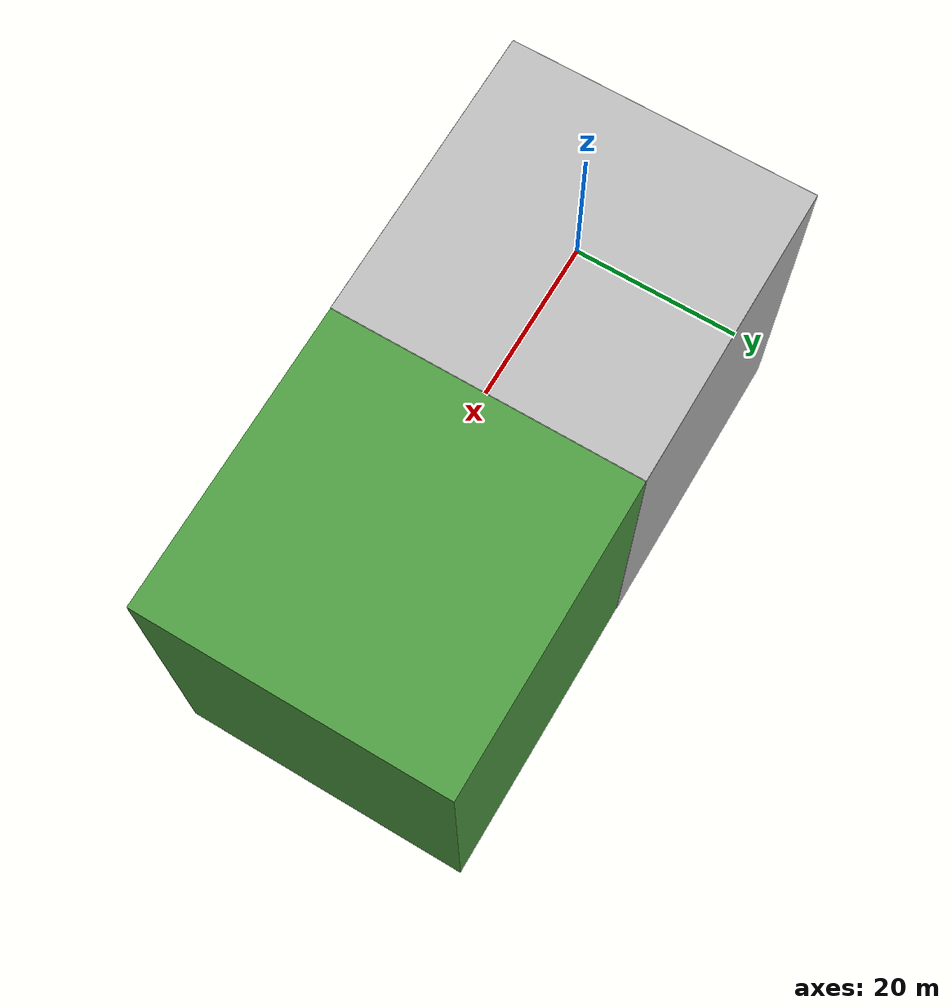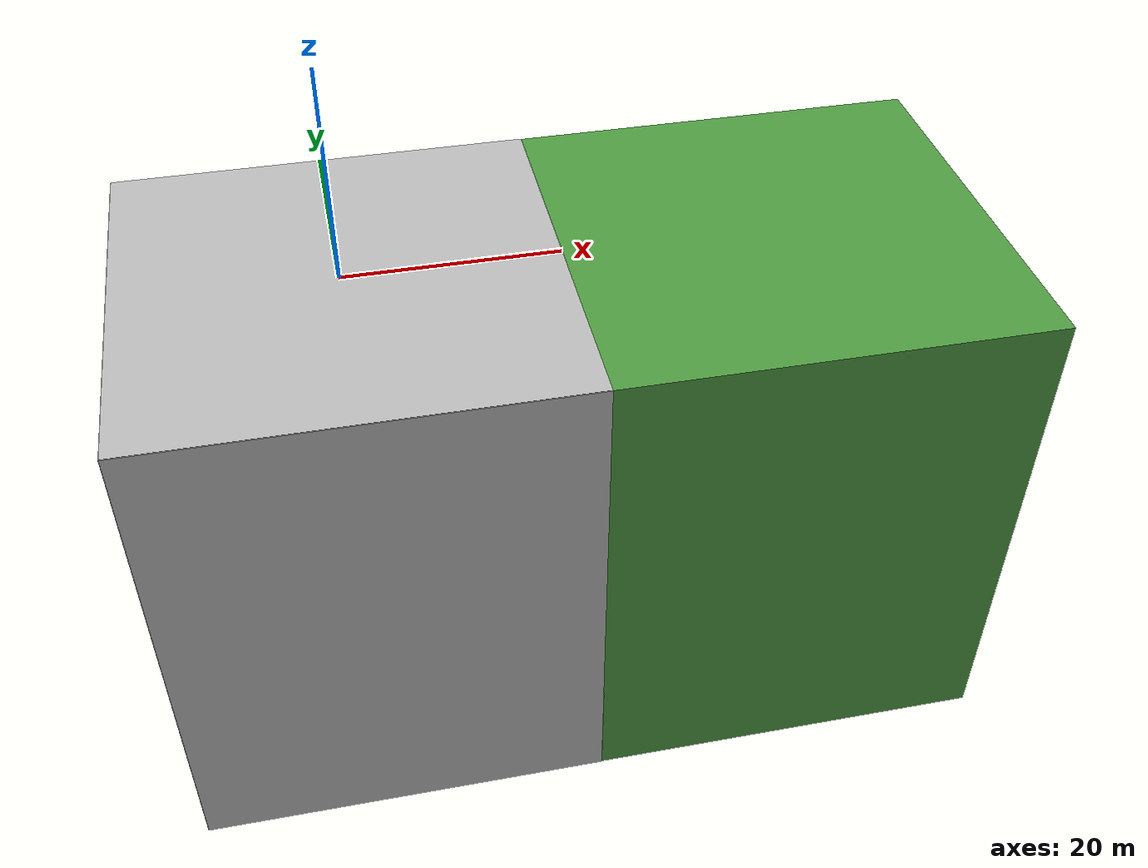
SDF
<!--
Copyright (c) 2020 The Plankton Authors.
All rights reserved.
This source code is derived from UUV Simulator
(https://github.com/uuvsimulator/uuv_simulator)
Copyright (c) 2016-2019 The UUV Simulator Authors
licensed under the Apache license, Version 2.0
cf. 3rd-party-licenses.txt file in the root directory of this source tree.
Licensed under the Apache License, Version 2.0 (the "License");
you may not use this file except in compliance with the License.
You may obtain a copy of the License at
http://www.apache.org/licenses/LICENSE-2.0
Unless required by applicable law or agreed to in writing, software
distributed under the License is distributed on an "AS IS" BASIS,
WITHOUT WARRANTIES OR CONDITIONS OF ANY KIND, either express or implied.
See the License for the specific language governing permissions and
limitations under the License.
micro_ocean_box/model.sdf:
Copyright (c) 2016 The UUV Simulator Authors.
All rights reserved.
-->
<?xml version="1.0" ?>
<sdf version="1.5">
  <world name="empty_underwater">
    <physics name="default_physics" default="true" type="ode">
      <max_step_size>0.002</max_step_size>
      <real_time_factor>1</real_time_factor>
      <real_time_update_rate>500</real_time_update_rate>
      <ode>
        <solver>
          <type>quick</type>
          <iters>50</iters>
          <sor>0.5</sor>
        </solver>
      </ode>
    </physics>
    <scene>
      <ambient>0.01 0.01 0.01 1.0</ambient>
      <sky>
        <clouds>
          <speed>12</speed>
        </clouds>
      </sky>
      <shadows>1</shadows>
      <fog>
        <color>0.1 0.2 0.3 1.0</color>
        <type>linear</type>
        <density>0.001</density>
        <start>10</start>
        <end>200</end>
      </fog>
    </scene>

    <!-- Origin placed somewhere in the middle of the North Sea  -->
    <spherical_coordinates>
      <latitude_deg>56.71897669633431</latitude_deg>
      <longitude_deg>3.515625</longitude_deg>
    </spherical_coordinates>

    <!-- Global light source -->
    <include>
      <uri>model://sun</uri>
    </include>

    <!-- Bounding box with sea surface -->
    <include>
      <uri>model://micro_ocean_box</uri>
      <pose>0 0 0 0 0 0</pose>
    </include>

    <!-- Land box -->
    <include>
      <uri>model://land_box</uri>
    </include>

    <plugin name="gazebo_ros" filename="libgazebo_ros_state.so">
      <ros>
        <namespace>/gazebo</namespace>
      </ros>
    </plugin>

    <plugin name="underwater_current_plugin" filename="libuuv_underwater_current_ros_plugin.so">
      <namespace>hydrodynamics</namespace>
      <constant_current>
        <topic>current_velocity</topic>
        <velocity>
          <mean>0</mean>
          <min>0</min>
          <max>5</max>
          <mu>0.0</mu>
          <noiseAmp>0.0</noiseAmp>
        </velocity>

        <horizontal_angle>
          <mean>0</mean>
          <min>-3.141592653589793238</min>
          <max>3.141592653589793238</max>
          <mu>0.0</mu>
          <noiseAmp>0.0</noiseAmp>
        </horizontal_angle>

        <vertical_angle>
          <mean>0</mean>
          <min>-3.141592653589793238</min>
          <max>3.141592653589793238</max>
          <mu>0.0</mu>
          <noiseAmp>0.0</noiseAmp>
        </vertical_angle>
      </constant_current>
    </plugin>

    <plugin name="sc_interface" filename="libuuv_sc_ros_interface_plugin.so"/>

  </world>
</sdf>

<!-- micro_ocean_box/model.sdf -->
<sdf version="1.5">
  <model name="micro_ocean_box">
    <static>true</static>
    <link name="link">
      <visual name="ground">
        <cast_shadows>false</cast_shadows>
        <pose>0 0 -50 0 0 0</pose>
        <geometry>
          <box>
            <size>40 40 .1</size>
          </box>
        </geometry>
        <material>
          <script>
            <uri>file://media/materials/scripts/sand.material</uri>
            <name>UUVSimulator/SandAndStones</name>
          </script>
        </material>
      </visual>

      <collision name="ground">
        <pose>0 0 -50 0 0 0</pose>
        <geometry>
          <box>
            <size>40 40 .1</size>
          </box>
        </geometry>
      </collision>

      <visual name="surface">
        <cast_shadows>false</cast_shadows>
        <pose>0 0 0 0 0 0</pose>
        <geometry>
          <box>
            <size>40 40 .1</size>
          </box>
        </geometry>
        <material>
          <script>
            <uri>file://media/materials/scripts/water.material</uri>
            <name>UUVSimulator/StaticDeepWater</name>
          </script>
        </material>
      </visual>

      <visual name="north">
        <cast_shadows>false</cast_shadows>
        <pose>20 0 -25 0 0 0</pose>
        <geometry>
          <box>
            <size>.1 40 50</size>
          </box>
        </geometry>
        <material>
          <script>
            <uri>file://media/materials/scripts/water.material</uri>
            <name>UUVSimulator/SeaWall</name>
          </script>
        </material>
      </visual>

      <visual name="south">
        <cast_shadows>false</cast_shadows>
        <pose>-20 0 -25 0 0 0</pose>
        <geometry>
          <box>
            <size>.1 40 50</size>
          </box>
        </geometry>
        <material>
          <script>
            <uri>file://media/materials/scripts/water.material</uri>
            <name>UUVSimulator/SeaWall</name>
          </script>
        </material>
      </visual>

      <visual name="east">
        <cast_shadows>false</cast_shadows>
        <pose>0 -20 -25 0 0 0</pose>
        <geometry>
          <box>
            <size>40 .1 50</size>
          </box>
        </geometry>
        <material>
          <script>
            <uri>file://media/materials/scripts/water.material</uri>
            <name>UUVSimulator/SeaWall</name>
          </script>
        </material>
      </visual>

      <visual name="west">
        <cast_shadows>false</cast_shadows>
        <pose>0 20 -25 0 0 0</pose>
        <geometry>
          <box>
            <size>40 .1 50</size>
          </box>
        </geometry>
        <material>
          <script>
            <uri>file://media/materials/scripts/water.material</uri>
            <name>UUVSimulator/SeaWall</name>
          </script>
        </material>
      </visual>
    </link>
  </model>
</sdf>

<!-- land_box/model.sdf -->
<sdf version='1.7'>
  <model name='land_box'>
    <link name='link'>
      <inertial>
        <mass>1</mass>
        <inertia>
          <ixx>0.166667</ixx>
          <ixy>0</ixy>
          <ixz>0</ixz>
          <iyy>0.166667</iyy>
          <iyz>0</iyz>
          <izz>0.166667</izz>
        </inertia>
        <pose>0 0 0 0 -0 0</pose>
      </inertial>
      <self_collide>0</self_collide>
      <enable_wind>0</enable_wind>
      <kinematic>0</kinematic>
      <pose>40 0 -25 0 -0 0</pose>
      <gravity>1</gravity>
      <visual name='visual'>
        <geometry>
          <box>
            <size>40 40 50</size>
          </box>
        </geometry>
        <material>
          <script>
            <name>Gazebo/Grass</name>
            <uri>file://media/materials/scripts/gazebo.material</uri>
          </script>
          <shader type='pixel'>
            <normal_map>__default__</normal_map>
          </shader>
          <ambient>0.3 0.3 0.3 1</ambient>
          <diffuse>0.7 0.7 0.7 1</diffuse>
          <specular>0.01 0.01 0.01 1</specular>
          <emissive>0 0 0 1</emissive>
        </material>
        <pose>0 0 0 0 -0 0</pose>
        <transparency>0</transparency>
        <cast_shadows>1</cast_shadows>
      </visual>
      <collision name='collision'>
        <laser_retro>0</laser_retro>
        <max_contacts>10</max_contacts>
        <pose>0 0 0 0 -0 0</pose>
        <geometry>
          <box>
            <size>40 40 49.96</size>
          </box>
        </geometry>
        <surface>
          <friction>
            <ode>
              <mu>1</mu>
              <mu2>1</mu2>
              <fdir1>0 0 0</fdir1>
              <slip1>0</slip1>
              <slip2>0</slip2>
            </ode>
            <torsional>
              <coefficient>1</coefficient>
              <patch_radius>0</patch_radius>
              <surface_radius>0</surface_radius>
              <use_patch_radius>1</use_patch_radius>
              <ode>
                <slip>0</slip>
              </ode>
            </torsional>
          </friction>
          <bounce>
            <restitution_coefficient>0</restitution_coefficient>
            <threshold>1e+06</threshold>
          </bounce>
          <contact>
            <collide_without_contact>0</collide_without_contact>
            <collide_without_contact_bitmask>1</collide_without_contact_bitmask>
            <collide_bitmask>1</collide_bitmask>
            <ode>
              <soft_cfm>0</soft_cfm>
              <soft_erp>0.2</soft_erp>
              <kp>1e+13</kp>
              <kd>1</kd>
              <max_vel>0.01</max_vel>
              <min_depth>0</min_depth>
            </ode>
            <bullet>
              <split_impulse>1</split_impulse>
              <split_impulse_penetration_threshold>-0.01</split_impulse_penetration_threshold>
              <soft_cfm>0</soft_cfm>
              <soft_erp>0.2</soft_erp>
              <kp>1e+13</kp>
              <kd>1</kd>
            </bullet>
          </contact>
        </surface>
      </collision>
    </link>
    <static>1</static>
    <allow_auto_disable>1</allow_auto_disable>
  </model>
</sdf>
